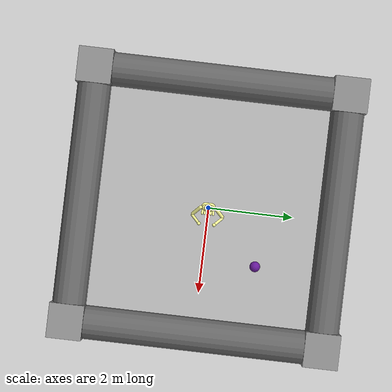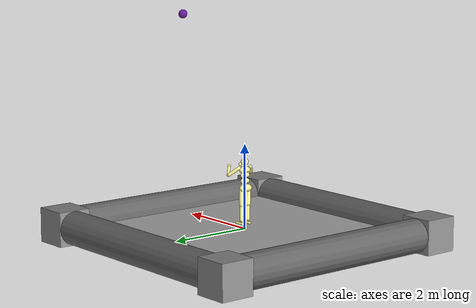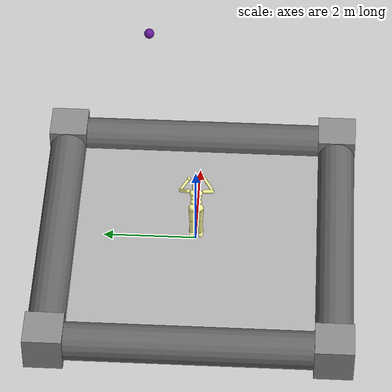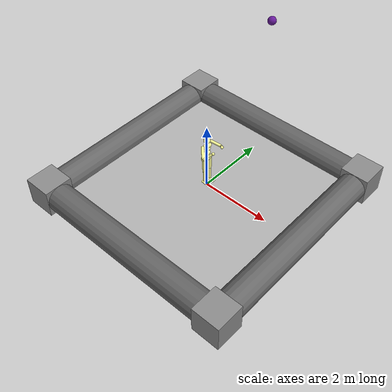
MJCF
<mujoco model="Humanoid and 100 objects">
    <compiler angle="degree"/>

    <option timestep="0.003" iterations="50" solver="Newton" jacobian="sparse" cone="elliptic" tolerance="1e-10"/>

    <size njmax="5000" nconmax="2000" nstack="5000000"/>

    <default>
        <geom solimp=".9 .9 .01"/>

        <default class="object1">
            <geom type="sphere"  rgba=".4 .1 .6 1" size="0.1" solref="-1000 0"/>
        </default>

        <default class="object2">
            <geom type="ellipsoid" material="geom" rgba=".4 .6 .9 1" size="0.15 0.1 0.07"/>
        </default>

        <default class="object3">
            <geom type="box" material="geom" rgba=".4 .9 .9 1" size="0.15 0.1 0.05"/>
        </default>

        <default class="object4">
            <geom type="cylinder" material="geom" rgba=".8 .6 .8 1" size="0.1 0.05" condim="4" friction="1 .01 .01"/>
        </default>

        <default class="object5">
            <geom type="sphere" material="geom" rgba=".9 .1 .1 1" size="0.1"/>
        </default>

        <default class="humanoid">
            <geom rgba="1.2 1.2 0.6 1" material="geom"/>
            <joint damping="1" limited="true"/>
        </default>

        <default class="border">
            <geom type="capsule" size="0.4" rgba=".4 .4 .4 1"/>
        </default>

        <default class="borderpost">
            <geom type="box" size="0.41 0.41 0.41" rgba=".55 .55 .55 1"/>
        </default>
    </default>

    <asset>
        <texture type="skybox" builtin="gradient" width="128" height="128" rgb1=".4 .6 .8" rgb2="0 0 0"/>
        <texture name="texgeom" type="cube" builtin="flat" mark="cross" width="128" height="128"
            rgb1="0.6 0.6 0.6" rgb2="0.6 0.6 0.6" markrgb="1 1 1"/>
        <texture name="texplane" type="2d" builtin="checker" rgb1=".4 .4 .4" rgb2=".6 .6 .6"
            width="512" height="512"/>
        <material name='geom' texture="texgeom" texuniform="true"/>
        <material name='MatPlane' reflectance='0.3' texture="texplane" texrepeat="1 1" texuniform="true"/>
    </asset>

    <visual>
        <quality shadowsize="4096" offsamples="8"/>
        <map znear="0.1" force="0.05"/>
    </visual>

    <statistic extent="4"/>

    <worldbody>
        <light directional="true" diffuse=".8 .8 .8" pos="0 0 10" dir="0 0 -10"/>

        <geom pos="0 0 0" type="plane" size="3 3 .5" rgba=".7 .7 .7 1" material="MatPlane"/>

        <geom class="border" fromto="-3 3 0 3 3 0"  />
        <geom class="border" fromto="-3 -3 0 3 -3 0"  />
        <geom class="border" fromto="3 3 0 3 -3 0"  />
        <geom class="border" fromto="-3 3 0 -3 -3 0"  />
        <geom class="borderpost" pos="3 3 0"/>
        <geom class="borderpost" pos="-3 3 0"/>
        <geom class="borderpost" pos="3 -3 0"/>
        <geom class="borderpost" pos="-3 -3 0"/>

        <body name='torso' pos='0 0 1.4' childclass="humanoid">
            <freejoint name="root"/>
            <geom name='torso1' type='capsule' fromto='0 -.07 0 0 .07 0'  size='0.07'/>
            <geom name='head' type='sphere' pos='0 0 .19' size='.09'/>
            <geom name='uwaist' type='capsule' fromto='-.01 -.06 -.12 -.01 .06 -.12' size='0.06'/>
            <body name='lwaist' pos='-.01 0 -0.260' quat='1.000 0 -0.002 0' >
                <geom name='lwaist' type='capsule' fromto='0 -.06 0 0 .06 0'  size='0.06' />
                <joint name='abdomen_z' type='hinge' pos='0 0 0.065' axis='0 0 1' range='-45 45' damping='5' stiffness='20' armature='0.02' />
                <joint name='abdomen_y' type='hinge' pos='0 0 0.065' axis='0 1 0' range='-75 30' damping='5' stiffness='10' armature='0.02' />
                <body name='pelvis' pos='0 0 -0.165' quat='1.000 0 -0.002 0' >
                    <joint name='abdomen_x' type='hinge' pos='0 0 0.1' axis='1 0 0' range='-35 35' damping='5' stiffness='10' armature='0.02' />
                    <geom name='butt' type='capsule' fromto='-.02 -.07 0 -.02 .07 0'  size='0.09' />
                    <body name='right_thigh' pos='0 -0.1 -0.04' >
                        <joint name='right_hip_x' type='hinge' pos='0 0 0' axis='1 0 0' range='-25 5'   damping='5' stiffness='10' armature='0.01' />
                        <joint name='right_hip_z' type='hinge' pos='0 0 0' axis='0 0 1' range='-60 35'  damping='5' stiffness='10' armature='0.01' />
                        <joint name='right_hip_y' type='hinge' pos='0 0 0' axis='0 1 0' range='-120 20' damping='5' stiffness='20' armature='0.01' />
                        <geom name='right_thigh1' type='capsule' fromto='0 0 0 0 0.01 -.34'  size='0.06' />
                        <body name='right_shin' pos='0 0.01 -0.403' >
                            <joint name='right_knee' type='hinge' pos='0 0 .02' axis='0 -1 0' range='-160 -2' stiffness='1' armature='0.0060' />
                            <geom name='right_shin1' type='capsule' fromto='0 0 0 0 0 -.3'   size='0.049' />
                            <body name='right_foot' pos='0 0 -.39' >
                                <joint name='right_ankle_y' type='hinge' pos='0 0 0.08' axis='0 1 0'   range='-50 50' stiffness='4' armature='0.0008' />
                                <joint name='right_ankle_x' type='hinge' pos='0 0 0.04' axis='1 0 0.5' range='-50 50' stiffness='1'  armature='0.0006' />
                                <geom name='right_foot_cap1' type='capsule' fromto='-.07 -0.02 0 0.14 -0.04 0'  size='0.027' />
                                <geom name='right_foot_cap2' type='capsule' fromto='-.07 0 0 0.14  0.02 0'  size='0.027' />
                            </body>
                        </body>
                    </body>
                    <body name='left_thigh' pos='0 0.1 -0.04' >
                        <joint name='left_hip_x' type='hinge' pos='0 0 0' axis='-1 0 0' range='-25 5'  damping='5' stiffness='10' armature='0.01' />
                        <joint name='left_hip_z' type='hinge' pos='0 0 0' axis='0 0 -1' range='-60 35' damping='5' stiffness='10' armature='0.01' />
                        <joint name='left_hip_y' type='hinge' pos='0 0 0' axis='0 1 0' range='-120 20' damping='5' stiffness='20' armature='0.01' />
                        <geom name='left_thigh1' type='capsule' fromto='0 0 0 0 -0.01 -.34'  size='0.06' />
                        <body name='left_shin' pos='0 -0.01 -0.403' >
                            <joint name='left_knee' type='hinge' pos='0 0 .02' axis='0 -1 0' range='-160 -2' stiffness='1' armature='0.0060' />
                            <geom name='left_shin1' type='capsule' fromto='0 0 0 0 0 -.3'   size='0.049' />
                            <body name='left_foot' pos='0 0 -.39' >
                                <joint name='left_ankle_y' type='hinge' pos='0 0 0.08' axis='0 1 0'   range='-50 50'  stiffness='4' armature='0.0008' />
                                <joint name='left_ankle_x' type='hinge' pos='0 0 0.04' axis='1 0 0.5' range='-50 50'  stiffness='1'  armature='0.0006' />
                                <geom name='left_foot_cap1' type='capsule' fromto='-.07 0.02 0 0.14 0.04 0'  size='0.027' />
                                <geom name='left_foot_cap2' type='capsule' fromto='-.07 0 0 0.14  -0.02 0'  size='0.027' />
                            </body>
                        </body>
                    </body>
                </body>
            </body>
            <body name='right_upper_arm' pos='0 -0.17 0.06' >
                <joint name='right_shoulder1' type='hinge' pos='0 0 0' axis='2 1 1'  range='-85 60' stiffness='1' armature='0.0068' />
                <joint name='right_shoulder2' type='hinge' pos='0 0 0' axis='0 -1 1' range='-85 60' stiffness='1'  armature='0.0051' />
                <geom name='right_uarm1' type='capsule' fromto='0 0 0 .16 -.16 -.16'  size='0.04 0.16' />
                <body name='right_lower_arm' pos='.18 -.18 -.18' >
                    <joint name='right_elbow' type='hinge' pos='0 0 0' axis='0 -1 1' range='-90 50'  stiffness='0' armature='0.0028' />
                    <geom name='right_larm' type='capsule' fromto='0.01 0.01 0.01 .17 .17 .17'  size='0.031' />
                    <geom name='right_hand' type='sphere' pos='.18 .18 .18'  size='0.04'/>
                </body>
            </body>
            <body name='left_upper_arm' pos='0 0.17 0.06' >
                <joint name='left_shoulder1' type='hinge' pos='0 0 0' axis='2 -1 1' range='-60 85' stiffness='1' armature='0.0068' />
                <joint name='left_shoulder2' type='hinge' pos='0 0 0' axis='0 1 1' range='-60 85'  stiffness='1' armature='0.0051' />
                <geom name='left_uarm1' type='capsule' fromto='0 0 0 .16 .16 -.16'  size='0.04 0.16' />
                <body name='left_lower_arm' pos='.18 .18 -.18' >
                    <joint name='left_elbow' type='hinge' pos='0 0 0' axis='0 -1 -1' range='-90 50' stiffness='0' armature='0.0028' />
                    <geom name='left_larm' type='capsule' fromto='0.01 -0.01 0.01 .17 -.17 .17'  size='0.031' />
                    <geom name='left_hand' type='sphere' pos='.18 -.18 .18'  size='0.04'/>
                </body>
            </body>
        </body>

        <body pos="1 1 5 " quat="-0.632456 -0.632456 0.316228 0.316228">
            <freejoint/>
            <geom class="object1"/>
        </body>

    </worldbody>
</mujoco>
